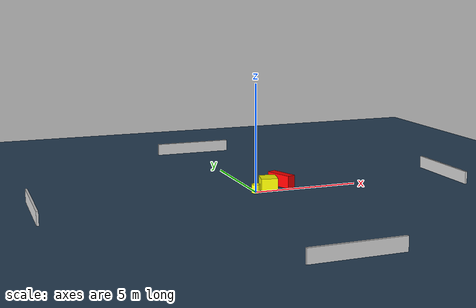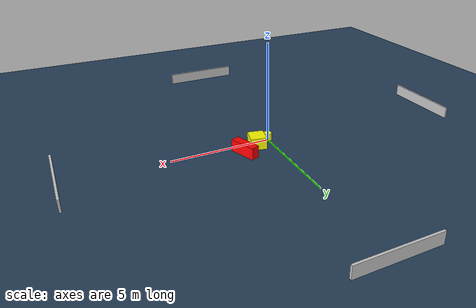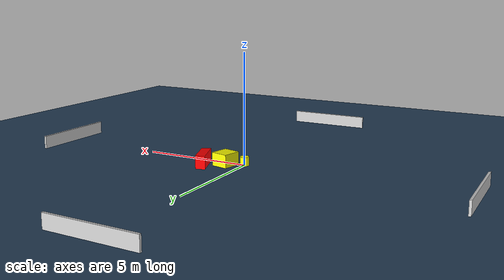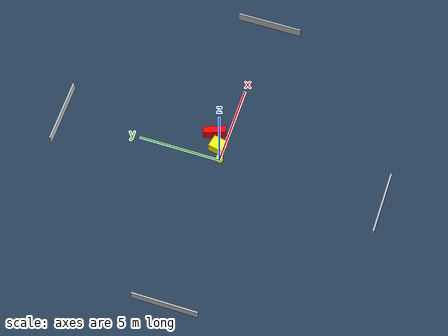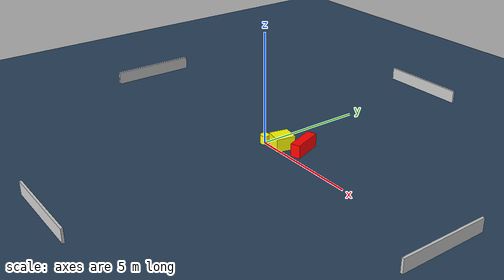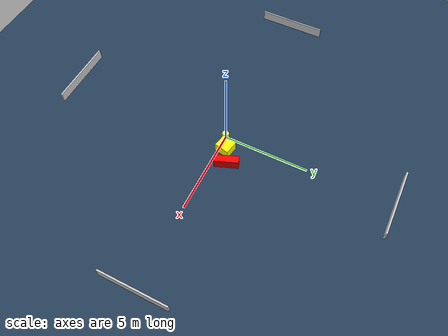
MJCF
<?xml version="1.0" ?>
<mujoco model="generated_environment">
  <option timestep="0.01" integrator="RK4" cone="elliptic"/>
  <default>
    <geom density="1"/>
  </default>
  <asset>
    <texture builtin="gradient" height="3072" name="skybox" rgb1="0.3 0.5 0.7" rgb2="0 0 0" type="skybox" width="512"/>
    <texture builtin="checker" height="300" name="groundplane" rgb1="0.2 0.3 0.4" rgb2="0.1 0.2 0.3" type="2d" width="300"/>
    <material name="groundplane" reflectance="0.2" texrepeat="5 5" texture="groundplane"/>
  </asset>
  <worldbody>
    <light dir="0 0 -1" directional="true" pos="0 0 1.5"/>
    <geom condim="3" friction="0.5 0.005 0.001" material="groundplane" name="floor" pos="0 0 0" size="0 0 0.05" type="plane"/>
    <body name="walls">
      <geom name="wall_1" condim="4" pos="-10.0 0.0 0.3" rgba="0.800000011920929 0.800000011920929 0.800000011920929 1.0" size="0.05 2.0 0.3" type="box"/>
      <geom name="wall_2" condim="4" pos="10.0 0.0 0.3" rgba="0.800000011920929 0.800000011920929 0.800000011920929 1.0" size="0.05 2.0 0.3" type="box"/>
      <geom name="wall_3" condim="4" pos="0.0 -10.0 0.3" rgba="0.800000011920929 0.800000011920929 0.800000011920929 1.0" size="2.0 0.05 0.3" type="box"/>
      <geom name="wall_4" condim="4" pos="0.0 10.0 0.3" rgba="0.800000011920929 0.800000011920929 0.800000011920929 1.0" size="2.0 0.05 0.3" type="box"/>
    </body>
    <body name="robot">
      <joint name="joint_x" type="slide" pos="0 0 0" axis="1 0 0"/>
      <joint name="joint_y" type="slide" pos="0 0 0" axis="0 1 0"/>
      <geom name="robot" type="cylinder" pos="0.0 0.0 0.2" size="0.2 0.2 0.0" mass="5.0" friction="1.0 0.005 0.0001" condim="4" rgba="1.0 1.0 0.0 1.0"/>
    </body>
    <body name="obstacle_1_movable">
      <geom name="obstacle_1_movable" condim="4" pos="0.7596408439267942 0.3625059838180112 0.3" euler="0 0 167.70415945750267" friction="0.0 0.005 0.001" rgba="1.0 1.0 0.0 1.0" size="0.39404004364840983 0.4283163195976135 0.3" type="box" mass="0.1"/>
      <joint type="free"/>
    </body>
    <body name="obstacle_2_static">
      <geom name="obstacle_2_static" condim="4" pos="1.6114037887111434 0.8427717333638669 0.3" euler="0 0 110.63811231013119" friction="0.0 0.005 0.001" rgba="1.0 0.0 0.0 1.0" size="0.6952685644203624 0.2125436815436796 0.3" type="box"/>
    </body>
  </worldbody>
  <actuator>
    <motor name="actuator_x" joint="joint_x" gear="1" ctrlrange="-1 1"/>
    <motor name="actuator_y" joint="joint_y" gear="1" ctrlrange="-1 1"/>
  </actuator>
</mujoco>
